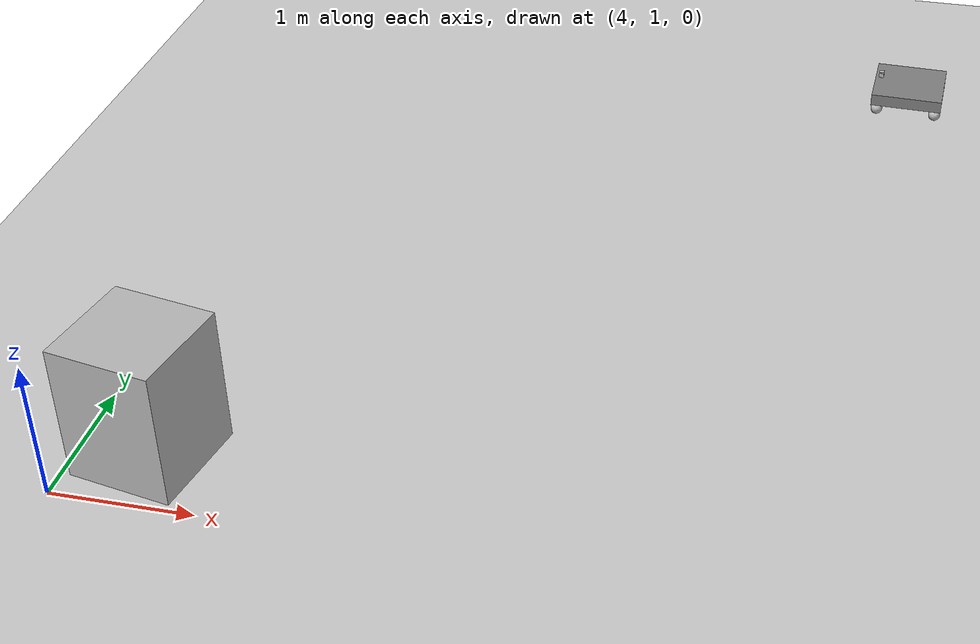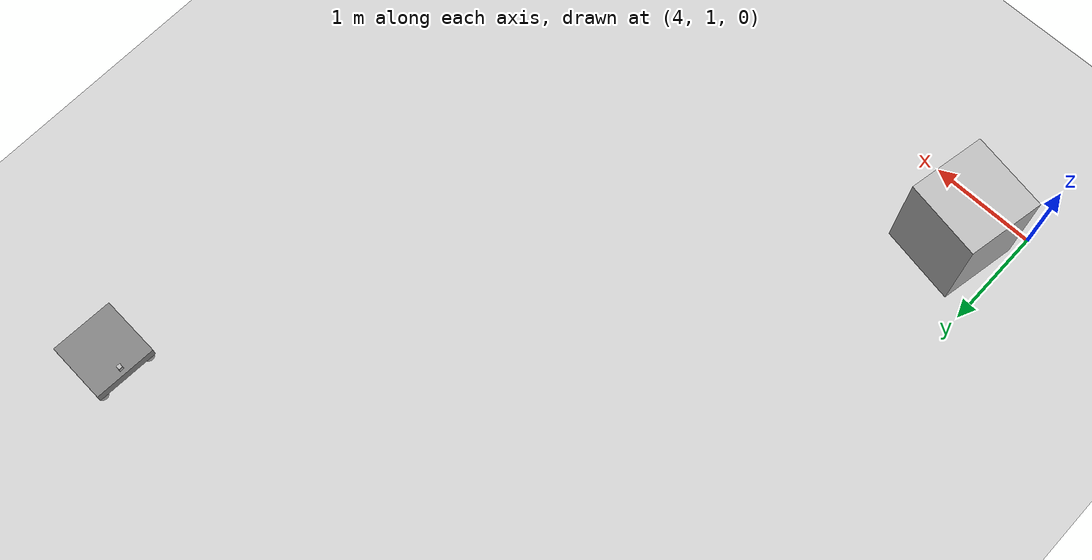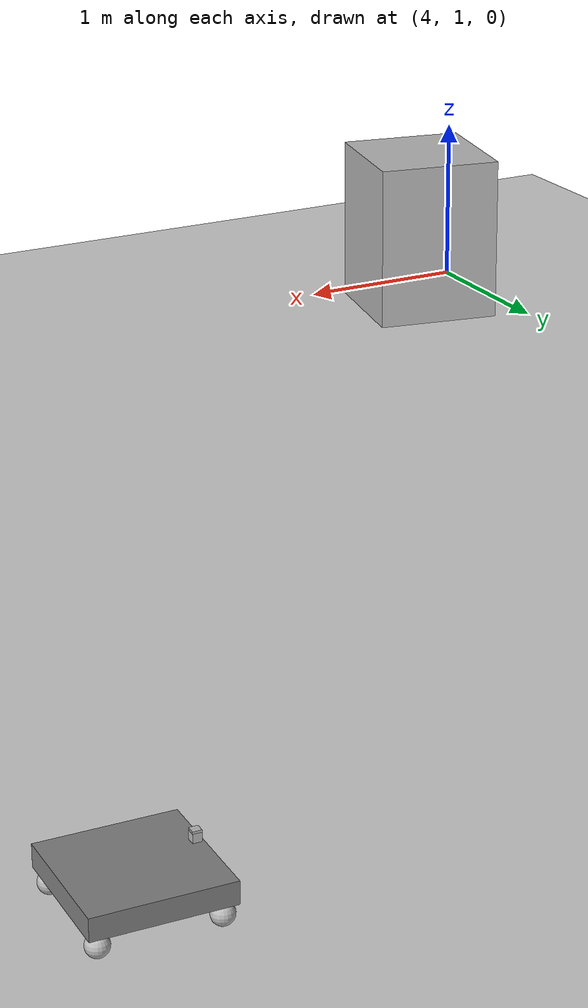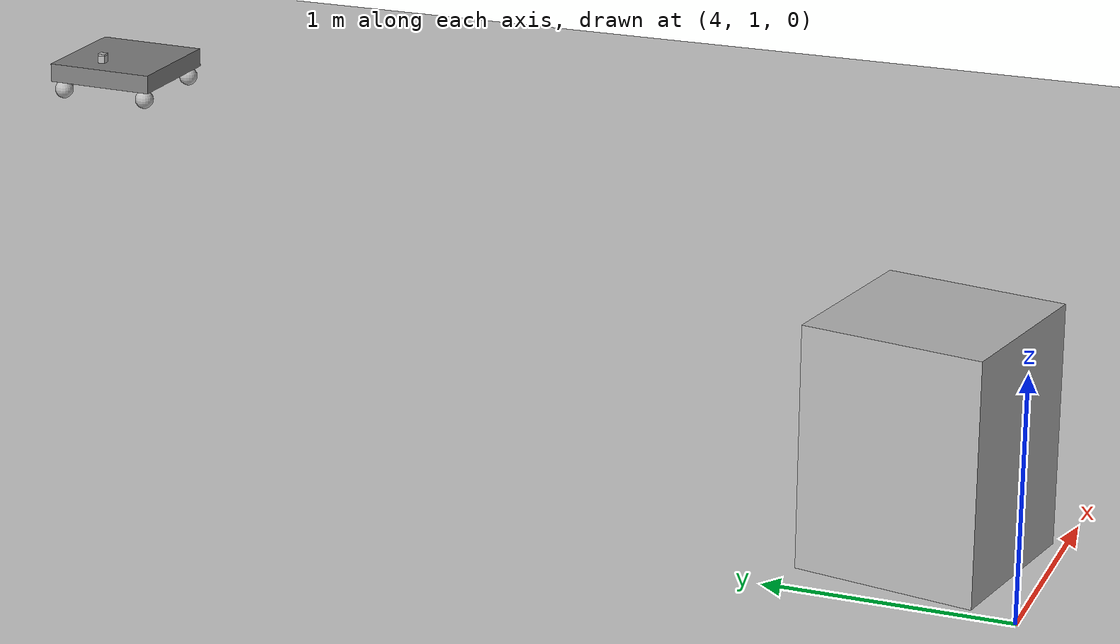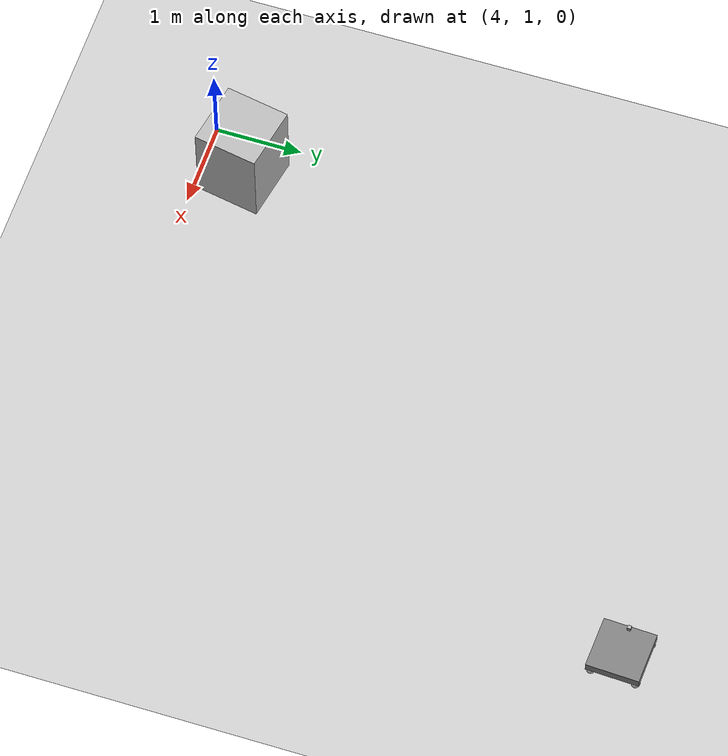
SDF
<?xml version='1.0'?>
<sdf version='1.5'>
 <world name="default">
   <include>
      <uri>model://sun</uri>
   </include>
   <include>
      <uri>model://ground_plane</uri>
   </include>

   <include>
      <uri>model://ropod</uri>
      <pose>9.1 7.3 0.0 0.0 0.0 3.1</pose>
    </include>

    <model name="box">
      <pose>4.5 1.49 0.5 0 0 6.1</pose>
      <link name="link">
        <collision name="collision">
          <geometry>
            <box>
              <size>0.75 0.75 1</size>
            </box>
          </geometry>
        </collision>

        <visual name="visual">
          <geometry>
            <box>
              <size>0.75 0.75 1</size>
            </box>
          </geometry>
        </visual>
      </link>

    </model>

 </world>
</sdf>

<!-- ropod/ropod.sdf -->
<sdf version='1.5'>

  <model name='ropod'>

   <link name='base_link'>

      <inertial>
        <mass>0.01</mass>
        <inertia> <!-- inertias are tricky to compute -->
          <!-- http://gazebosim.org/tutorials?tut=inertia&cat=build_robot -->
          <ixx>0.083*00.0*1.01</ixx>       <!-- for a box: ixx = 0.083 * mass * (y*y + z*z) -->
          <ixy>0.0</ixy>         <!-- for a box: ixy = 0 -->
          <ixz>0.0</ixz>         <!-- for a box: ixz = 0 -->
          <iyy>0.083*00.01*1.01</iyy>       <!-- for a box: iyy = 0.083 * mass * (x*x + z*z) -->
          <iyz>0.0</iyz>         <!-- for a box: iyz = 0 -->
          <izz>0.083*00.01*2</izz>       <!-- for a box: izz = 0.083 * mass * (x*x + y*y) -->
        </inertia>
      </inertial>

      <collision name='base_link_collision'>
        <pose>0 0 0.15 0 0 0</pose>
        <geometry>
          <box>
            <size>0.6 0.6 0.1</size>
          </box>
        </geometry>
      </collision>
      <visual name='base_link_visual'>
        <pose>0 0 0.15 0 0 0</pose>
        <geometry>
          <box>
            <size>0.6 0.6 0.1</size>
          </box>
        </geometry>
	<material>
		<ambient>0.5 0.5 0.5 1</ambient>
		<diffuse>0.5 0.5 0.5 1</diffuse>
		<specular>0.1 0.1 0.1 1</specular>
		<emissive>0 0 0 0</emissive>
	</material>
      </visual>

      <collision name='base_link_collision_left_rear_wheel'>
        <pose>-0.25 0.25 0.05 0 -0 0</pose>
        <geometry>
          <sphere>
            <radius>0.05</radius>
          </sphere>
        </geometry>
        <surface>
          <contact>
            <ode>
              <kp>1e+09</kp>
              <kd>1</kd>
            </ode>
          </contact>
          <friction>
            <ode>
              <mu>0.1</mu>
              <mu2>0.1</mu2>
            </ode>
          </friction>
        </surface>
      </collision>
      <visual name='base_link_visual_left_rear_wheel'>
         <pose>-0.25 0.25 0.05 0 -0 0</pose>
        <geometry>
          <sphere>
            <radius>0.05</radius>
          </sphere>
        </geometry>
      </visual>

      <collision name='base_link_collision_left_top_wheel'>
        <pose>0.25 0.25 0.05 0 -0 0</pose>
        <geometry>
          <sphere>
            <radius>0.05</radius>
          </sphere>
        </geometry>
        <surface>
          <contact>
            <ode>
              <kp>1e+09</kp>
              <kd>1</kd>
            </ode>
          </contact>
          <friction>
            <ode>
              <mu>0.1</mu>
              <mu2>0.1</mu2>
            </ode>
          </friction>
        </surface>
      </collision>
      <visual name='base_link_visual_left_top_wheel'>
         <pose>0.25 0.25 0.05 0 -0 0</pose>
        <geometry>
          <sphere>
            <radius>0.05</radius>
          </sphere>
        </geometry>
      </visual>

      <collision name='base_link_collision_right_top_wheel'>
        <pose>0.25 -0.25 0.05 0 -0 0</pose>
        <geometry>
          <sphere>
            <radius>0.05</radius>
          </sphere>
        </geometry>
        <surface>
          <contact>
            <ode>
              <kp>1e+09</kp>
              <kd>1</kd>
            </ode>
          </contact>
          <friction>
            <ode>
              <mu>0.1</mu>
              <mu2>0.1</mu2>
            </ode>
          </friction>
        </surface>
      </collision>
      <visual name='base_link_visual_right_top_wheel'>
         <pose>0.25 -0.25 0.05 0 -0 0</pose>
        <geometry>
          <sphere>
            <radius>0.05</radius>
          </sphere>
        </geometry>
      </visual>

      <collision name='base_link_collision_right_rear_wheel'>
        <pose>-0.25 -0.25 0.05 0 -0 0</pose>
        <geometry>
          <sphere>
            <radius>0.05</radius>
          </sphere>
        </geometry>
        <surface>
          <contact>
            <ode>
              <kp>1e+09</kp>
              <kd>1</kd>
            </ode>
          </contact>
          <friction>
            <ode>
              <mu>0.1</mu>
              <mu2>0.1</mu2>
            </ode>
          </friction>
        </surface>
      </collision>
      <visual name='base_link_visual_right_rear_wheel'>
         <pose>-0.25 -0.25 0.05 0 -0 0</pose>
        <geometry>
          <sphere>
            <radius>0.05</radius>
          </sphere>
        </geometry>
      </visual>

    <!-- ********************** laser front ***************************** -->

      <visual name='base_link_visual_laser'>
        <pose>0.25 0 0.25 0 -0 0</pose>
        <geometry>
          <box>
            <size>0.04 0.04 0.04</size>
          </box>
        </geometry>
      </visual>
      <visual name='base_link_visual_lasertop'>
        <pose>0.25 0 0.275 0 -0 0</pose>
        <geometry>
          <box>
            <size>0.04 0.04 0.01</size>
          </box>
        </geometry>
      </visual>

      <sensor name='laser' type='ray'>
        <pose>0.25 0 0.25 0 0 0</pose>
        <ray>
          <scan>
            <horizontal>
              <samples>500</samples>
              <resolution>1</resolution>
              <min_angle>-2.35</min_angle>
              <max_angle>2.35</max_angle>
            </horizontal>
            <vertical>
              <samples>1</samples>
              <resolution>1</resolution>
              <min_angle>0</min_angle>
              <max_angle>0</max_angle>
            </vertical>
          </scan>
          <range>
            <min>0.01</min>
            <max>4</max>
            <resolution>0.01</resolution>
          </range>
        </ray>

        <plugin name="gazebo_ros_laser" filename="libgazebo_ros_laser.so">
          <topicName>/ropod/laser_sim</topicName>
          <frameName>/ropod/laser/scan</frameName>
          <robotNamespace></robotNamespace>
          <gaussianNoise>0.01</gaussianNoise>
          <always_on>1</always_on>
          <updateRate>30.0</updateRate>
        </plugin>
        <visualize>1</visualize>
      </sensor>

    <!-- ********************** laser back ***************************** -->

    <!-- ********************** bumper ***************************** -->
    <sensor type="contact" name="gazebo_base_bumper">
        <update_rate>100.0</update_rate>
        <always_on>1</always_on>
        <contact>
            <collision>base_link_collision</collision>
            <topic>bumper_contact</topic>
        </contact>
        <plugin name="gazebo_ros_bumper_controller" filename="libgazebo_ros_bumper.so">
            <alwaysOn>true</alwaysOn>
            <updateRate>100.0</updateRate>
            <bumperTopicName>/ropod/bumper</bumperTopicName>
            <frameName>world</frameName>
        </plugin>
    </sensor>

<!-- ********************** Other parameters ***************************** -->
      <gravity>1</gravity>
      <velocity_decay>
        <linear>0</linear>
        <angular>0</angular>
      </velocity_decay>
      <self_collide>0</self_collide>

   </link>

   <plugin name="Controller_Plugin" filename="libgazebo_ros_planar_move.so">
       <odometryRate>30.0</odometryRate>
       <commandTopic>cmd_vel</commandTopic>
       <odometryTopic>odom_incomplete</odometryTopic>
       <robotBaseFrame>base_link</robotBaseFrame>
       <odometryFrame>/ropod/odom_incomplete</odometryFrame>
       <robotNamespace>ropod</robotNamespace>
   </plugin>

  </model>

  </sdf>
